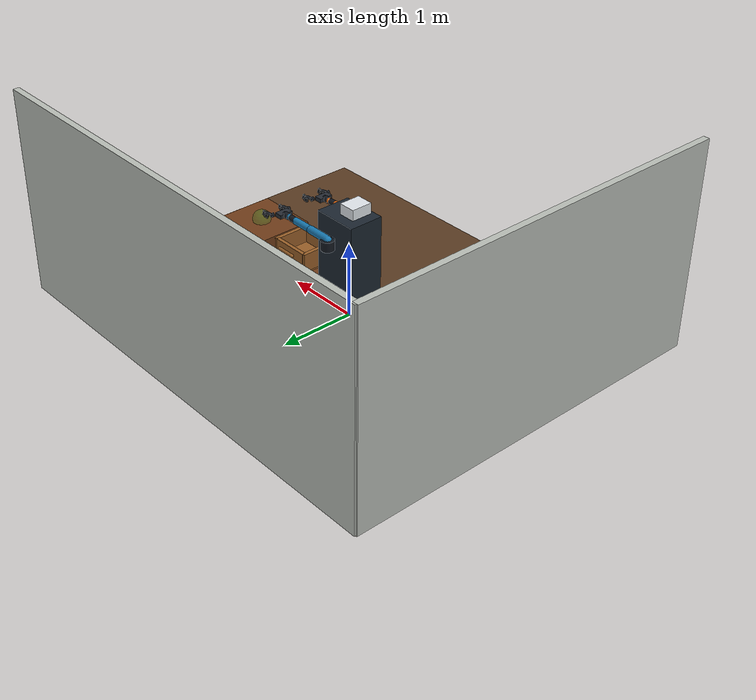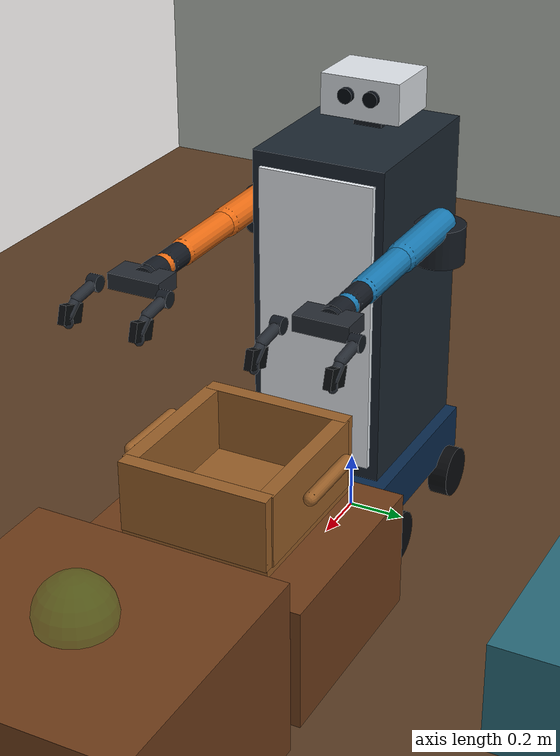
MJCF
<mujoco model="hwr_bimanual_living_basket_v1">
  <compiler angle="radian" autolimits="true" inertiafromgeom="true"/>
  <option timestep="0.002" gravity="0 0 -9.81" integrator="implicitfast">
    <flag multiccd="enable"/>
  </option>
  <size memory="128M"/>
  <visual><global offwidth="960" offheight="640"/><quality shadowsize="4096"/></visual>
  <asset>
    <include file="../common/robot_assets.xml"/>
    <texture name="wood_floor_tex" type="2d" builtin="checker" width="512" height="512" rgb1="0.28 0.18 0.10" rgb2="0.42 0.29 0.17"/>
    <texture name="wall_tex" type="2d" builtin="gradient" width="256" height="256" rgb1="0.84 0.82 0.75" rgb2="0.61 0.67 0.68"/>
    <texture name="wicker_tex" type="2d" builtin="checker" width="256" height="256" rgb1="0.48 0.27 0.10" rgb2="0.72 0.48 0.22"/>
    <material name="wood_floor" texture="wood_floor_tex" texrepeat="10 8" roughness="0.75"/>
    <material name="wall" texture="wall_tex" roughness="0.9"/>
    <material name="wicker" texture="wicker_tex" texrepeat="5 4" roughness="0.88"/>
    <material name="sofa_fabric" rgba="0.16 0.42 0.48 1" roughness="0.92"/>
    <material name="cabinet_wood" rgba="0.44 0.24 0.10 1" roughness="0.65"/>
  </asset>
  <default><include file="../common/robot_defaults.xml"/></default>
  <worldbody>
    <geom name="floor" type="plane" size="3 2.5 0.1" material="wood_floor"/>
    <geom name="wall_north" type="box" pos="0 2.48 1.35" size="3 0.04 1.35" material="wall"/>
    <geom name="wall_west" type="box" pos="-2.98 0 1.35" size="0.04 2.5 1.35" material="wall"/>
    <light name="key" pos="-1.5 -1.0 2.8" dir="0.4 0.3 -1" directional="true" castshadow="true" diffuse="0.9 0.78 0.62"/>
    <light name="window" pos="2.2 -1.4 2.1" dir="-0.8 0.3 -0.5" directional="true" castshadow="true" diffuse="0.45 0.62 0.82"/>
    <camera name="third_person" pos="3.8 -4.4 3.0" xyaxes="0.75 0.66 0 -0.33 0.38 0.86" fovy="48"/>
    <camera name="room_overview" pos="0 0 5.2" xyaxes="1 0 0 0 1 0" fovy="54"/>
    <include file="../common/robot_body.xml"/>
    <body name="living_sofa" pos="0.3 1.35 0">
      <geom name="sofa_seat" type="box" pos="0 0 0.34" size="0.90 0.38 0.18" material="sofa_fabric"/>
      <geom name="sofa_back" type="box" pos="0 0.34 0.67" size="0.90 0.10 0.42" material="sofa_fabric"/>
      <geom name="sofa_left_arm" type="box" pos="0 0 0.50" size="0.10 0.44 0.28" material="sofa_fabric"/>
      <geom name="sofa_right_arm" type="box" pos="0 0 0.50" size="0.10 0.44 0.28" material="sofa_fabric"/>
    </body>
    <body name="basket_start_table" pos="0.82 0 0">
      <geom name="basket_start_support" type="box" pos="0 0 0.205" size="0.36 0.40 0.205" material="cabinet_wood"/>
    </body>
    <body name="living_target_cabinet" pos="1.70 0 0">
      <geom name="living_target_support" type="box" pos="0 0 0.295" size="0.42 0.42 0.295" material="cabinet_wood"/>
      <site name="payload_target" pos="0 0 0.62" size="0.12 0.12 0.10" rgba="0.1 0.9 0.2 0.08"/>
    </body>
    <body name="basket_payload" pos="0.82 0 0.46">
      <freejoint name="payload_free"/>
      <geom name="basket_bottom" type="box" pos="0 0 0" size="0.28 0.25 0.025" mass="0.70" material="wicker"/>
      <geom name="basket_front" type="box" pos="0.26 0 0.12" size="0.025 0.25 0.12" mass="0.35" material="wicker"/>
      <geom name="basket_back" type="box" pos="-0.26 0 0.12" size="0.025 0.25 0.12" mass="0.35" material="wicker"/>
      <geom name="basket_left_wall" type="box" pos="0 0.23 0.12" size="0.25 0.025 0.12" mass="0.30" material="wicker"/>
      <geom name="basket_right_wall" type="box" pos="0 -0.23 0.12" size="0.25 0.025 0.12" mass="0.30" material="wicker"/>
      <geom name="basket_left_handle" type="capsule" fromto="-0.12 0.31 0.18 0.12 0.31 0.18" size="0.022" mass="0.20" material="wicker"/>
      <geom name="basket_right_handle" type="capsule" fromto="-0.12 -0.31 0.18 0.12 -0.31 0.18" size="0.022" mass="0.20" material="wicker"/>
    </body>
  </worldbody>
  <contact>
    <include file="../common/robot_contacts.xml"/>
    <pair geom1="left_gripper_left_pad" geom2="basket_left_handle" condim="4" friction="4 4 0.05 0.005 0.005"/>
    <pair geom1="left_gripper_right_pad" geom2="basket_left_handle" condim="4" friction="4 4 0.05 0.005 0.005"/>
    <pair geom1="right_gripper_left_pad" geom2="basket_right_handle" condim="4" friction="4 4 0.05 0.005 0.005"/>
    <pair geom1="right_gripper_right_pad" geom2="basket_right_handle" condim="4" friction="4 4 0.05 0.005 0.005"/>
  </contact>
  <actuator><include file="../common/robot_actuators.xml"/></actuator>
  <sensor><include file="../common/robot_sensors.xml"/></sensor>
</mujoco>

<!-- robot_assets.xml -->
<mujocoinclude>
  <material name="chassis_material" rgba="0.035 0.16 0.30 1" metallic="0.3" roughness="0.28"/>
  <material name="body_material" rgba="0.11 0.15 0.19 1" metallic="0.22" roughness="0.34"/>
  <material name="panel_material" rgba="0.92 0.94 0.96 1" metallic="0.08" roughness="0.28"/>
  <material name="arm_material" rgba="0.93 0.43 0.08 1" metallic="0.18" roughness="0.28"/>
  <material name="arm_secondary_material" rgba="0.10 0.48 0.70 1" metallic="0.18" roughness="0.28"/>
  <material name="joint_material" rgba="0.08 0.10 0.13 1" metallic="0.65" roughness="0.24"/>
  <material name="gripper_material" rgba="0.15 0.17 0.20 1" metallic="0.28" roughness="0.48"/>
  <material name="gripper_pad_material" rgba="0.035 0.045 0.055 1" metallic="0.02" roughness="0.86"/>
  <material name="wheel_material" rgba="0.035 0.04 0.05 1" metallic="0.05" roughness="0.72"/>
  <material name="camera_material" rgba="0.88 0.90 0.92 1" metallic="0.16" roughness="0.26"/>
  <material name="camera_lens_material" rgba="0.015 0.035 0.06 1" metallic="0.38" roughness="0.12"/>
</mujocoinclude>

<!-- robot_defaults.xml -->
<mujocoinclude>
  <joint damping="1.0" armature="0.02" frictionloss="0.05"/>
  <geom condim="4" friction="0.9 0.01 0.001" solref="0.006 1" solimp="0.9 0.95 0.001"/>
  <default class="arm_joint">
    <joint damping="2.0" armature="0.05"/>
  </default>
  <default class="finger_joint">
    <joint damping="3.0" armature="0.01"/>
  </default>
  <default class="finger_pad">
    <geom condim="4" friction="3.0 0.04 0.004" solref="0.004 1"/>
  </default>
</mujocoinclude>

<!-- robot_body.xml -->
<mujocoinclude>
  <body name="robot_base" pos="0 0 0.22">
    <freejoint name="base_free"/>
    <geom name="chassis_collision" type="box" size="0.34 0.26 0.08" density="400"
          material="chassis_material"/>
    <geom name="body_box_collision" type="box" pos="-0.01 0 0.65" size="0.30 0.23 0.55"
          density="65" material="body_material"/>
    <geom name="body_front_panel" type="box" pos="0.295 0 0.65" size="0.012 0.20 0.50"
          mass="0.05" contype="0" conaffinity="0" material="panel_material"/>
    <geom name="bumper_front" type="capsule" fromto="0.34 -0.21 0 0.34 0.21 0" size="0.035"
          density="300" material="joint_material"/>
    <site name="base_imu" pos="0 0 0.12" size="0.012" rgba="0 1 0 0"/>

    <body name="top_camera_head" pos="-0.12 0 1.31">
      <geom name="camera_head_pedestal" type="box" pos="0 0 -0.09" size="0.045 0.050 0.040"
            density="220" material="joint_material"/>
      <geom name="camera_head_housing" type="box" size="0.11 0.14 0.07" density="180"
            material="camera_material"/>
      <geom name="camera_rgb_lens" type="cylinder" pos="0.118 -0.045 0.01" size="0.026 0.012"
            quat="0.707107 0 0.707107 0" mass="0.02" contype="0" conaffinity="0"
            material="camera_lens_material"/>
      <geom name="camera_depth_lens" type="cylinder" pos="0.118 0.045 0.01" size="0.026 0.012"
            quat="0.707107 0 0.707107 0" mass="0.02" contype="0" conaffinity="0"
            material="camera_lens_material"/>
      <camera name="head_rgb" pos="0.13 -0.045 0.01" xyaxes="0 -1 0 0.16 0 0.987" fovy="66"/>
      <camera name="head_depth" pos="0.13 0.045 0.01" xyaxes="0 -1 0 0.16 0 0.987" fovy="66"/>
    </body>

    <body name="wheel_front_left" pos="0.24 0.27 -0.13">
      <joint name="wheel_front_left_joint" type="hinge" axis="0 1 0" limited="false" damping="0.15"/>
      <geom name="wheel_front_left_geom" type="cylinder" size="0.09 0.035"
            quat="0.707107 0.707107 0 0" density="450" material="wheel_material"
            friction="1.3 0.003 0.0002"/>
    </body>
    <body name="wheel_rear_left" pos="-0.24 0.27 -0.13">
      <joint name="wheel_rear_left_joint" type="hinge" axis="0 1 0" limited="false" damping="0.15"/>
      <geom name="wheel_rear_left_geom" type="cylinder" size="0.09 0.035"
            quat="0.707107 0.707107 0 0" density="450" material="wheel_material"
            friction="1.3 0.003 0.0002"/>
    </body>
    <body name="wheel_front_right" pos="0.24 -0.27 -0.13">
      <joint name="wheel_front_right_joint" type="hinge" axis="0 1 0" limited="false" damping="0.15"/>
      <geom name="wheel_front_right_geom" type="cylinder" size="0.09 0.035"
            quat="0.707107 0.707107 0 0" density="450" material="wheel_material"
            friction="1.3 0.003 0.0002"/>
    </body>
    <body name="wheel_rear_right" pos="-0.24 -0.27 -0.13">
      <joint name="wheel_rear_right_joint" type="hinge" axis="0 1 0" limited="false" damping="0.15"/>
      <geom name="wheel_rear_right_geom" type="cylinder" size="0.09 0.035"
            quat="0.707107 0.707107 0 0" density="450" material="wheel_material"
            friction="1.3 0.003 0.0002"/>
    </body>

    <body name="right_shoulder_pan_link" pos="0.02 -0.31 0.82" gravcomp="1">
      <joint name="right_arm_joint_1" class="arm_joint" type="hinge" axis="0 0 1" range="-3.05 3.05"/>
      <geom type="cylinder" size="0.085 0.065" pos="0 0 0.065" density="620" material="joint_material"/>
      <body name="right_upper_arm_link" pos="0 0 0.13" gravcomp="1">
        <joint name="right_arm_joint_2" class="arm_joint" type="hinge" axis="0 1 0" range="-1.75 1.45"/>
        <geom type="capsule" fromto="0 0 0 0.31 0 0" size="0.050" density="560" material="arm_material"/>
        <body name="right_forearm_link" pos="0.31 0 0" gravcomp="1">
          <joint name="right_arm_joint_3" class="arm_joint" type="hinge" axis="0 1 0" range="-2.55 2.55"/>
          <geom type="capsule" fromto="0 0 0 0.27 0 0" size="0.044" density="520" material="arm_material"/>
          <body name="right_wrist_roll_link" pos="0.27 0 0" gravcomp="1">
            <joint name="right_arm_joint_4" class="arm_joint" type="hinge" axis="1 0 0" range="-3.05 3.05"/>
            <geom type="capsule" fromto="0 0 0 0.09 0 0" size="0.040" density="500" material="joint_material"/>
            <body name="right_wrist_pitch_link" pos="0.09 0 0" gravcomp="1">
              <joint name="right_arm_joint_5" class="arm_joint" type="hinge" axis="0 1 0" range="-2.10 2.10"/>
              <geom type="capsule" fromto="0 0 0 0.08 0 0" size="0.037" density="480" material="arm_material"/>
              <body name="right_wrist_yaw_link" pos="0.08 0 0" gravcomp="1">
                <joint name="right_arm_joint_6" class="arm_joint" type="hinge" axis="1 0 0" range="-3.05 3.05"/>
                <geom type="cylinder" size="0.041 0.035" quat="0.707107 0 0.707107 0"
                      density="470" material="joint_material"/>
                <body name="right_gripper_palm" pos="0.065 0 0" gravcomp="1">
                  <geom name="right_gripper_palm_shell" type="box" size="0.050 0.090 0.026"
                        density="470" material="gripper_material"/>
                  <geom name="right_gripper_wrist_adapter" type="cylinder" pos="-0.035 0 0"
                        size="0.038 0.025" quat="0.707107 0 0.707107 0"
                        density="420" material="joint_material"/>
                  <camera name="wrist_rgb" pos="0.012 0 0.060" xyaxes="0 -1 0 0 0 1" fovy="72"/>
                  <site name="right_grasp_center" pos="0.190 0 -0.045" size="0.012" rgba="0 1 0 0"/>
                  <body name="right_gripper_left_finger" pos="0.070 0.122 -0.005" gravcomp="1">
                    <joint name="right_gripper_left_finger_joint" class="finger_joint" type="slide"
                           axis="0 -1 0" range="0 0.095"/>
                    <geom name="right_gripper_left_knuckle" type="cylinder" size="0.026 0.018"
                          quat="0.707107 0.707107 0 0" density="390"
                          material="joint_material"/>
                    <geom name="right_gripper_left_proximal" type="capsule"
                          fromto="0 0 0 0.100 0 -0.012" size="0.018" density="360"
                          material="gripper_material"/>
                    <geom name="right_gripper_left_distal" type="capsule"
                          fromto="0.100 0 -0.012 0.145 0 -0.047" size="0.016" density="340"
                          material="gripper_material"/>
                    <geom name="right_gripper_left_tip" type="capsule"
                          fromto="0.145 0 -0.047 0.145 0 -0.075" size="0.014" density="330"
                          material="gripper_material"/>
                    <geom name="right_gripper_left_pad" class="finger_pad" type="box"
                          size="0.045 0.012 0.030" pos="0.133 0 -0.045" euler="0 -0.30 0"
                          density="400" material="gripper_pad_material"/>
                  </body>
                  <body name="right_gripper_right_finger" pos="0.070 -0.122 -0.005" gravcomp="1">
                    <joint name="right_gripper_right_finger_joint" class="finger_joint" type="slide"
                           axis="0 1 0" range="0 0.095"/>
                    <geom name="right_gripper_right_knuckle" type="cylinder" size="0.026 0.018"
                          quat="0.707107 0.707107 0 0" density="390"
                          material="joint_material"/>
                    <geom name="right_gripper_right_proximal" type="capsule"
                          fromto="0 0 0 0.100 0 -0.012" size="0.018" density="360"
                          material="gripper_material"/>
                    <geom name="right_gripper_right_distal" type="capsule"
                          fromto="0.100 0 -0.012 0.145 0 -0.047" size="0.016" density="340"
                          material="gripper_material"/>
                    <geom name="right_gripper_right_tip" type="capsule"
                          fromto="0.145 0 -0.047 0.145 0 -0.075" size="0.014" density="330"
                          material="gripper_material"/>
                    <geom name="right_gripper_right_pad" class="finger_pad" type="box"
                          size="0.045 0.012 0.030" pos="0.133 0 -0.045" euler="0 -0.30 0"
                          density="400" material="gripper_pad_material"/>
                  </body>
                </body>
              </body>
            </body>
          </body>
        </body>
      </body>
    </body>

    <body name="left_shoulder_pan_link" pos="0.02 0.31 0.82" gravcomp="1">
      <joint name="left_arm_joint_1" class="arm_joint" type="hinge" axis="0 0 1" range="-3.05 3.05"/>
      <geom type="cylinder" size="0.085 0.065" pos="0 0 0.065" density="620" material="joint_material"/>
      <body name="left_upper_arm_link" pos="0 0 0.13" gravcomp="1">
        <joint name="left_arm_joint_2" class="arm_joint" type="hinge" axis="0 1 0" range="-1.75 1.45"/>
        <geom type="capsule" fromto="0 0 0 0.31 0 0" size="0.050" density="560" material="arm_secondary_material"/>
        <body name="left_forearm_link" pos="0.31 0 0" gravcomp="1">
          <joint name="left_arm_joint_3" class="arm_joint" type="hinge" axis="0 1 0" range="-2.55 2.55"/>
          <geom type="capsule" fromto="0 0 0 0.27 0 0" size="0.044" density="520" material="arm_secondary_material"/>
          <body name="left_wrist_roll_link" pos="0.27 0 0" gravcomp="1">
            <joint name="left_arm_joint_4" class="arm_joint" type="hinge" axis="1 0 0" range="-3.05 3.05"/>
            <geom type="capsule" fromto="0 0 0 0.09 0 0" size="0.040" density="500" material="joint_material"/>
            <body name="left_wrist_pitch_link" pos="0.09 0 0" gravcomp="1">
              <joint name="left_arm_joint_5" class="arm_joint" type="hinge" axis="0 1 0" range="-2.10 2.10"/>
              <geom type="capsule" fromto="0 0 0 0.08 0 0" size="0.037" density="480" material="arm_secondary_material"/>
              <body name="left_wrist_yaw_link" pos="0.08 0 0" gravcomp="1">
                <joint name="left_arm_joint_6" class="arm_joint" type="hinge" axis="1 0 0" range="-3.05 3.05"/>
                <geom type="cylinder" size="0.041 0.035" quat="0.707107 0 0.707107 0"
                      density="470" material="joint_material"/>
                <body name="left_gripper_palm" pos="0.065 0 0" gravcomp="1">
                  <geom name="left_gripper_palm_shell" type="box" size="0.050 0.090 0.026"
                        density="470" material="gripper_material"/>
                  <geom name="left_gripper_wrist_adapter" type="cylinder" pos="-0.035 0 0"
                        size="0.038 0.025" quat="0.707107 0 0.707107 0"
                        density="420" material="joint_material"/>
                  <camera name="left_wrist_rgb" pos="0.012 0 0.060" xyaxes="0 -1 0 0 0 1" fovy="72"/>
                  <site name="left_grasp_center" pos="0.190 0 -0.045" size="0.012" rgba="0 1 0 0"/>
                  <body name="left_gripper_left_finger" pos="0.070 0.122 -0.005" gravcomp="1">
                    <joint name="left_gripper_left_finger_joint" class="finger_joint" type="slide"
                           axis="0 -1 0" range="0 0.095"/>
                    <geom name="left_gripper_left_knuckle" type="cylinder" size="0.026 0.018"
                          quat="0.707107 0.707107 0 0" density="390"
                          material="joint_material"/>
                    <geom name="left_gripper_left_proximal" type="capsule"
                          fromto="0 0 0 0.100 0 -0.012" size="0.018" density="360"
                          material="gripper_material"/>
                    <geom name="left_gripper_left_distal" type="capsule"
                          fromto="0.100 0 -0.012 0.145 0 -0.047" size="0.016" density="340"
                          material="gripper_material"/>
                    <geom name="left_gripper_left_tip" type="capsule"
                          fromto="0.145 0 -0.047 0.145 0 -0.075" size="0.014" density="330"
                          material="gripper_material"/>
                    <geom name="left_gripper_left_pad" class="finger_pad" type="box"
                          size="0.045 0.012 0.030" pos="0.133 0 -0.045" euler="0 -0.30 0"
                          density="400" material="gripper_pad_material"/>
                  </body>
                  <body name="left_gripper_right_finger" pos="0.070 -0.122 -0.005" gravcomp="1">
                    <joint name="left_gripper_right_finger_joint" class="finger_joint" type="slide"
                           axis="0 1 0" range="0 0.095"/>
                    <geom name="left_gripper_right_knuckle" type="cylinder" size="0.026 0.018"
                          quat="0.707107 0.707107 0 0" density="390"
                          material="joint_material"/>
                    <geom name="left_gripper_right_proximal" type="capsule"
                          fromto="0 0 0 0.100 0 -0.012" size="0.018" density="360"
                          material="gripper_material"/>
                    <geom name="left_gripper_right_distal" type="capsule"
                          fromto="0.100 0 -0.012 0.145 0 -0.047" size="0.016" density="340"
                          material="gripper_material"/>
                    <geom name="left_gripper_right_tip" type="capsule"
                          fromto="0.145 0 -0.047 0.145 0 -0.075" size="0.014" density="330"
                          material="gripper_material"/>
                    <geom name="left_gripper_right_pad" class="finger_pad" type="box"
                          size="0.045 0.012 0.030" pos="0.133 0 -0.045" euler="0 -0.30 0"
                          density="400" material="gripper_pad_material"/>
                  </body>
                </body>
              </body>
            </body>
          </body>
        </body>
      </body>
    </body>
  </body>
</mujocoinclude>

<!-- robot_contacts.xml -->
<mujocoinclude>
  <exclude body1="robot_base" body2="right_shoulder_pan_link"/>
  <exclude body1="right_shoulder_pan_link" body2="right_upper_arm_link"/>
  <exclude body1="right_upper_arm_link" body2="right_forearm_link"/>
  <exclude body1="right_forearm_link" body2="right_wrist_roll_link"/>
  <exclude body1="right_wrist_roll_link" body2="right_wrist_pitch_link"/>
  <exclude body1="right_wrist_pitch_link" body2="right_wrist_yaw_link"/>
  <exclude body1="right_wrist_yaw_link" body2="right_gripper_palm"/>
  <exclude body1="right_gripper_palm" body2="right_gripper_left_finger"/>
  <exclude body1="right_gripper_palm" body2="right_gripper_right_finger"/>
  <exclude body1="robot_base" body2="left_shoulder_pan_link"/>
  <exclude body1="left_shoulder_pan_link" body2="left_upper_arm_link"/>
  <exclude body1="left_upper_arm_link" body2="left_forearm_link"/>
  <exclude body1="left_forearm_link" body2="left_wrist_roll_link"/>
  <exclude body1="left_wrist_roll_link" body2="left_wrist_pitch_link"/>
  <exclude body1="left_wrist_pitch_link" body2="left_wrist_yaw_link"/>
  <exclude body1="left_wrist_yaw_link" body2="left_gripper_palm"/>
  <exclude body1="left_gripper_palm" body2="left_gripper_left_finger"/>
  <exclude body1="left_gripper_palm" body2="left_gripper_right_finger"/>
</mujocoinclude>

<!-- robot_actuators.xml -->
<mujocoinclude>
  <velocity name="wheel_front_left_velocity" joint="wheel_front_left_joint" kv="18" forcerange="-30 30"/>
  <velocity name="wheel_rear_left_velocity" joint="wheel_rear_left_joint" kv="18" forcerange="-30 30"/>
  <velocity name="wheel_front_right_velocity" joint="wheel_front_right_joint" kv="18" forcerange="-30 30"/>
  <velocity name="wheel_rear_right_velocity" joint="wheel_rear_right_joint" kv="18" forcerange="-30 30"/>
  <position name="right_arm_joint_1_position" joint="right_arm_joint_1" kp="180" kv="24" forcerange="-75 75"/>
  <position name="right_arm_joint_2_position" joint="right_arm_joint_2" kp="180" kv="24" forcerange="-75 75"/>
  <position name="right_arm_joint_3_position" joint="right_arm_joint_3" kp="160" kv="20" forcerange="-60 60"/>
  <position name="right_arm_joint_4_position" joint="right_arm_joint_4" kp="100" kv="14" forcerange="-35 35"/>
  <position name="right_arm_joint_5_position" joint="right_arm_joint_5" kp="90" kv="12" forcerange="-30 30"/>
  <position name="right_arm_joint_6_position" joint="right_arm_joint_6" kp="70" kv="10" forcerange="-22 22"/>
  <position name="left_arm_joint_1_position" joint="left_arm_joint_1" kp="180" kv="24" forcerange="-75 75"/>
  <position name="left_arm_joint_2_position" joint="left_arm_joint_2" kp="180" kv="24" forcerange="-75 75"/>
  <position name="left_arm_joint_3_position" joint="left_arm_joint_3" kp="160" kv="20" forcerange="-60 60"/>
  <position name="left_arm_joint_4_position" joint="left_arm_joint_4" kp="100" kv="14" forcerange="-35 35"/>
  <position name="left_arm_joint_5_position" joint="left_arm_joint_5" kp="90" kv="12" forcerange="-30 30"/>
  <position name="left_arm_joint_6_position" joint="left_arm_joint_6" kp="70" kv="10" forcerange="-22 22"/>
  <position name="right_gripper_left_finger_position" joint="right_gripper_left_finger_joint"
            kp="260" kv="14" forcerange="-35 35"/>
  <position name="right_gripper_right_finger_position" joint="right_gripper_right_finger_joint"
            kp="260" kv="14" forcerange="-35 35"/>
  <position name="left_gripper_left_finger_position" joint="left_gripper_left_finger_joint"
            kp="260" kv="14" forcerange="-35 35"/>
  <position name="left_gripper_right_finger_position" joint="left_gripper_right_finger_joint"
            kp="260" kv="14" forcerange="-35 35"/>
</mujocoinclude>

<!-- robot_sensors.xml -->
<mujocoinclude>
  <gyro name="base_gyro" site="base_imu"/>
  <accelerometer name="base_accelerometer" site="base_imu"/>
</mujocoinclude>
